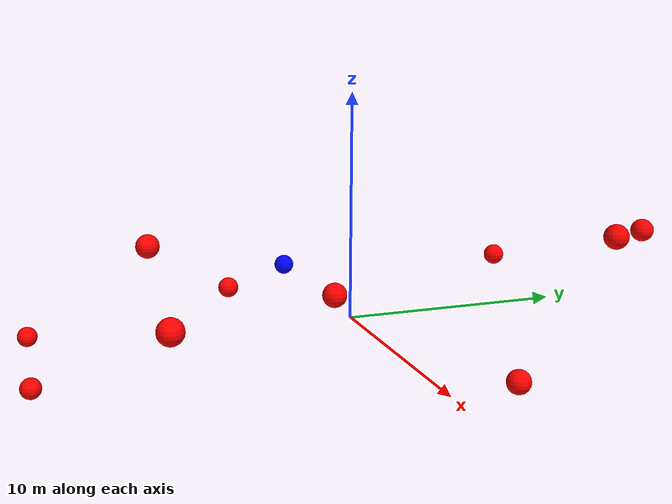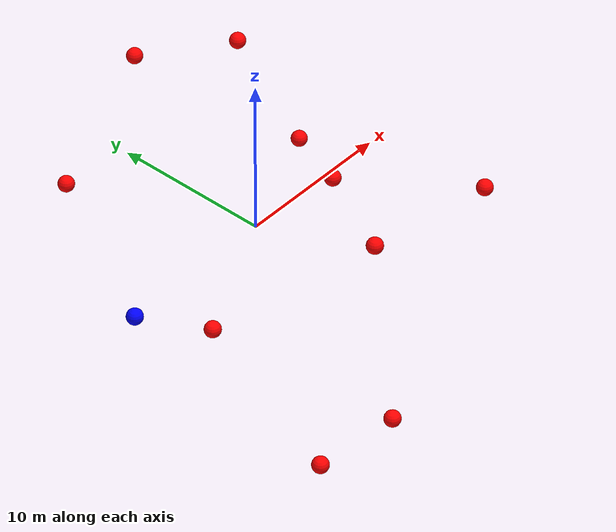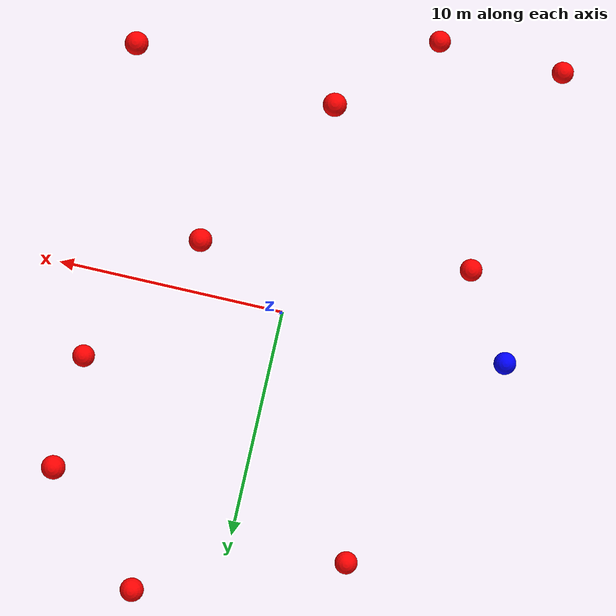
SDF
<?xml version="1.0" ?>
<sdf version="1.8">
    <world name="3d_world">
        <physics name="1ms" type="ode">
            <max_step_size>0.001</max_step_size>
            <real_time_factor>1.0</real_time_factor>
            <real_time_update_rate>1000.0</real_time_update_rate>
        </physics>
        <gravity>0 0 0</gravity>

        <plugin
            filename="gz-sim-physics-system"
            name="gz::sim::v8::systems::Physics">
        </plugin>
        <plugin
            filename="libignition-gazebo-user-commands-system.so"
            name="ignition::gazebo::systems::UserCommands">
        </plugin>
        <plugin
            filename="gz-sim-scene-broadcaster-system"
            name="gz::sim::systems::SceneBroadcaster">
        </plugin>
        <plugin
            filename="gz-sim-sensors-system"
            name="gz::sim::systems::Sensors">
            <render_engine>ogre2</render_engine>
        </plugin>

        <light type="directional" name="sun">
            <cast_shadows>true</cast_shadows>
            <pose>0 0 10 0 0 0</pose>
            <diffuse>0.8 0.8 0.8 1</diffuse>
            <specular>0.2 0.2 0.2 1</specular>
            <attenuation>
                <range>1000</range>
                <constant>0.9</constant>
                <linear>0.01</linear>
                <quadratic>0.001</quadratic>
            </attenuation>
            <direction>-0.5 0.1 -0.9</direction>
        </light>

        <!-- AGENTE -->
        <model name='agente' canonical_link='chassis'>
            <pose relative_to='world'>-10.0 0 0.0 0 0 0</pose>
            <link name='chassis'>
                <pose relative_to='__model__'>0.0 0 0.0 0 0 0</pose>
                <inertial>
                    <mass>1.14395</mass>
                    <inertia>
                        <ixx>0.095329</ixx>
                        <ixy>0</ixy>
                        <ixz>0</ixz>
                        <iyy>0.381317</iyy>
                        <iyz>0</iyz>
                        <izz>0.476646</izz>
                    </inertia>
                </inertial>
                <visual name='visual'>
                    <geometry>
                        <sphere>
                            <radius>0.5</radius>
                        </sphere>
                    </geometry>
                    <material>
                        <ambient>0.0 0.0 1.0 1</ambient>
                        <diffuse>0.0 0.0 1.0 1</diffuse>
                        <specular>0.0 0.0 1.0 1</specular>
                    </material>
                </visual>
                <collision name='collision'>
                    <geometry>
                        <sphere>
                            <radius>0.5</radius>
                        </sphere>
                    </geometry>
                </collision>
                <enable_gravity>false</enable_gravity>
            </link>

            <link name='lidar_link'>
                <pose relative_to='chassis'>0.0 0 0.1 0 0 0</pose>
                <inertial>
                    <mass>0.1</mass>
                    <inertia>
                        <ixx>0.000166667</ixx>
                        <iyy>0.000166667</iyy>
                        <izz>0.000166667</izz>
                    </inertia>
                </inertial>
                <collision name='collision'>
                    <geometry>
                        <cylinder>
                            <radius>0.05</radius>
                            <length>0.1</length>
                        </cylinder>
                    </geometry>
                </collision>
                <visual name='visual'>
                    <geometry>
                        <cylinder>
                            <radius>0.05</radius>
                            <length>0.1</length>
                        </cylinder>
                    </geometry>
                    <material>
                        <ambient>0.0 1.0 0.0 1</ambient>
                        <diffuse>0.0 1.0 0.0 1</diffuse>
                        <specular>0.0 1.0 0.0 1</specular>
                    </material>
                </visual>
                <sensor name="lidar" type="gpu_lidar">
                    <topic>scan</topic>
                    <update_rate>10</update_rate>
                    <lidar>
                        <scan>
                            <horizontal>
                                <samples>5000</samples>
                                <resolution>1</resolution>
                                <min_angle>-3.14159</min_angle>
                                <max_angle>3.14159</max_angle>
                            </horizontal>
                        </scan>
                        <range>
                            <min>0.1</min>
                            <max>10.0</max>
                            <resolution>0.01</resolution>
                        </range>
                    </lidar>
                    <visualize>true</visualize>
                    <always_on>true</always_on>
                    <update_rate>10</update_rate>
                    <pose_frame>lidar</pose_frame>
                </sensor>
                <enable_gravity>false</enable_gravity>
            </link>

            <joint name="lidar_joint" type="fixed">
                <parent>chassis</parent>
                <child>lidar_link</child>
            </joint>

            <plugin
                filename="ignition-gazebo-joint-state-publisher-system"
                name="ignition::gazebo::systems::JointStatePublisher">
            </plugin>
            <plugin
                filename="ignition-gazebo-odometry-publisher-system"
                name="ignition::gazebo::systems::OdometryPublisher">
                <dimensions>3</dimensions>
            </plugin>
            <plugin
                filename="ignition-gazebo-velocity-control-system"
                name="ignition::gazebo::systems::VelocityControl">
                <initial_linear>0.0 0 0</initial_linear>
                <initial_angular>0 0 0.0</initial_angular>
            </plugin>
            <plugin
                filename="libignition-gazebo-pose-publisher-system.so"
                name="ignition::gazebo::systems::PosePublisher">
                <topic>/agente/pose</topic>
                <frame_id>agente</frame_id>
                <update_rate>30</update_rate>
            </plugin>
        </model>

        <!-- OBSTACLE 1 -->
        <model name='obstacle_1' canonical_link='obstacle'>
            <static>false</static>
            <pose relative_to='world'>-7.68 -3.66 -0.32 0 0 0</pose>
            <link name='obstacle'>
                <pose relative_to='__model__'>0.0 0 0.0 0 0 0</pose>
                <visual name='visual'>
                    <geometry>
                        <sphere>
                            <radius>0.50</radius>
                        </sphere>
                    </geometry>
                    <material>
                        <ambient>1.0 0.0 0.0 1</ambient>
                        <diffuse>1.0 0.0 0.0 1</diffuse>
                        <specular>1.0 0.0 0.0 1</specular>
                    </material>
                </visual>
                <collision name='collision'>
                    <geometry>
                        <sphere>
                            <radius>0.50</radius>
                        </sphere>
                    </geometry>
                </collision>
                <enable_gravity>false</enable_gravity>
            </link>

            <plugin
                filename="ignition-gazebo-velocity-control-system"
                name="ignition::gazebo::systems::VelocityControl">
                <initial_linear>1.71 1.04 0.09</initial_linear>
                <initial_angular>0 0 0</initial_angular>
            </plugin>

            <plugin
                filename="ignition-gazebo-odometry-publisher-system"
                name="ignition::gazebo::systems::OdometryPublisher">
                <dimensions>3</dimensions>
            </plugin>
        </model>

        <!-- OBSTACLE 2 -->
        <model name='obstacle_2' canonical_link='obstacle'>
            <static>false</static>
            <pose relative_to='world'>-0.24 -8.88 3.89 0 0 0</pose>
            <link name='obstacle'>
                <pose relative_to='__model__'>0.0 0 0.0 0 0 0</pose>
                <visual name='visual'>
                    <geometry>
                        <sphere>
                            <radius>0.50</radius>
                        </sphere>
                    </geometry>
                    <material>
                        <ambient>1.0 0.0 0.0 1</ambient>
                        <diffuse>1.0 0.0 0.0 1</diffuse>
                        <specular>1.0 0.0 0.0 1</specular>
                    </material>
                </visual>
                <collision name='collision'>
                    <geometry>
                        <sphere>
                            <radius>0.50</radius>
                        </sphere>
                    </geometry>
                </collision>
                <enable_gravity>false</enable_gravity>
            </link>

            <plugin
                filename="ignition-gazebo-velocity-control-system"
                name="ignition::gazebo::systems::VelocityControl">
                <initial_linear>0.63 1.70 -0.75</initial_linear>
                <initial_angular>0 0 0</initial_angular>
            </plugin>

            <plugin
                filename="ignition-gazebo-odometry-publisher-system"
                name="ignition::gazebo::systems::OdometryPublisher">
                <dimensions>3</dimensions>
            </plugin>
        </model>

        <!-- OBSTACLE 3 -->
        <model name='obstacle_3' canonical_link='obstacle'>
            <static>false</static>
            <pose relative_to='world'>-4.24 -13.68 -3.19 0 0 0</pose>
            <link name='obstacle'>
                <pose relative_to='__model__'>0.0 0 0.0 0 0 0</pose>
                <visual name='visual'>
                    <geometry>
                        <sphere>
                            <radius>0.50</radius>
                        </sphere>
                    </geometry>
                    <material>
                        <ambient>1.0 0.0 0.0 1</ambient>
                        <diffuse>1.0 0.0 0.0 1</diffuse>
                        <specular>1.0 0.0 0.0 1</specular>
                    </material>
                </visual>
                <collision name='collision'>
                    <geometry>
                        <sphere>
                            <radius>0.50</radius>
                        </sphere>
                    </geometry>
                </collision>
                <enable_gravity>false</enable_gravity>
            </link>

            <plugin
                filename="ignition-gazebo-velocity-control-system"
                name="ignition::gazebo::systems::VelocityControl">
                <initial_linear>0.97 1.70 0.40</initial_linear>
                <initial_angular>0 0 0</initial_angular>
            </plugin>

            <plugin
                filename="ignition-gazebo-odometry-publisher-system"
                name="ignition::gazebo::systems::OdometryPublisher">
                <dimensions>3</dimensions>
            </plugin>
        </model>

        <!-- OBSTACLE 4 -->
        <model name='obstacle_4' canonical_link='obstacle'>
            <static>false</static>
            <pose relative_to='world'>-5.11 9.92 0.91 0 0 0</pose>
            <link name='obstacle'>
                <pose relative_to='__model__'>0.0 0 0.0 0 0 0</pose>
                <visual name='visual'>
                    <geometry>
                        <sphere>
                            <radius>0.50</radius>
                        </sphere>
                    </geometry>
                    <material>
                        <ambient>1.0 0.0 0.0 1</ambient>
                        <diffuse>1.0 0.0 0.0 1</diffuse>
                        <specular>1.0 0.0 0.0 1</specular>
                    </material>
                </visual>
                <collision name='collision'>
                    <geometry>
                        <sphere>
                            <radius>0.50</radius>
                        </sphere>
                    </geometry>
                </collision>
                <enable_gravity>false</enable_gravity>
            </link>

            <plugin
                filename="ignition-gazebo-velocity-control-system"
                name="ignition::gazebo::systems::VelocityControl">
                <initial_linear>0.91 -1.77 -0.16</initial_linear>
                <initial_angular>0 0 0</initial_angular>
            </plugin>

            <plugin
                filename="ignition-gazebo-odometry-publisher-system"
                name="ignition::gazebo::systems::OdometryPublisher">
                <dimensions>3</dimensions>
            </plugin>
        </model>

        <!-- OBSTACLE 5 -->
        <model name='obstacle_5' canonical_link='obstacle'>
            <static>false</static>
            <pose relative_to='world'>7.64 8.19 4.72 0 0 0</pose>
            <link name='obstacle'>
                <pose relative_to='__model__'>0.0 0 0.0 0 0 0</pose>
                <visual name='visual'>
                    <geometry>
                        <sphere>
                            <radius>0.50</radius>
                        </sphere>
                    </geometry>
                    <material>
                        <ambient>1.0 0.0 0.0 1</ambient>
                        <diffuse>1.0 0.0 0.0 1</diffuse>
                        <specular>1.0 0.0 0.0 1</specular>
                    </material>
                </visual>
                <collision name='collision'>
                    <geometry>
                        <sphere>
                            <radius>0.50</radius>
                        </sphere>
                    </geometry>
                </collision>
                <enable_gravity>false</enable_gravity>
            </link>

            <plugin
                filename="ignition-gazebo-velocity-control-system"
                name="ignition::gazebo::systems::VelocityControl">
                <initial_linear>-0.07 -1.19 -0.69</initial_linear>
                <initial_angular>0 0 0</initial_angular>
            </plugin>

            <plugin
                filename="ignition-gazebo-odometry-publisher-system"
                name="ignition::gazebo::systems::OdometryPublisher">
                <dimensions>3</dimensions>
            </plugin>
        </model>

        <!-- OBSTACLE 6 -->
        <model name='obstacle_6' canonical_link='obstacle'>
            <static>false</static>
            <pose relative_to='world'>4.03 -2.23 2.34 0 0 0</pose>
            <link name='obstacle'>
                <pose relative_to='__model__'>0.0 0 0.0 0 0 0</pose>
                <visual name='visual'>
                    <geometry>
                        <sphere>
                            <radius>0.50</radius>
                        </sphere>
                    </geometry>
                    <material>
                        <ambient>1.0 0.0 0.0 1</ambient>
                        <diffuse>1.0 0.0 0.0 1</diffuse>
                        <specular>1.0 0.0 0.0 1</specular>
                    </material>
                </visual>
                <collision name='collision'>
                    <geometry>
                        <sphere>
                            <radius>0.50</radius>
                        </sphere>
                    </geometry>
                </collision>
                <enable_gravity>false</enable_gravity>
            </link>

            <plugin
                filename="ignition-gazebo-velocity-control-system"
                name="ignition::gazebo::systems::VelocityControl">
                <initial_linear>-1.77 0.64 -0.68</initial_linear>
                <initial_angular>0 0 0</initial_angular>
            </plugin>

            <plugin
                filename="ignition-gazebo-odometry-publisher-system"
                name="ignition::gazebo::systems::OdometryPublisher">
                <dimensions>3</dimensions>
            </plugin>
        </model>

        <!-- OBSTACLE 7 -->
        <model name='obstacle_7' canonical_link='obstacle'>
            <static>false</static>
            <pose relative_to='world'>3.47 12.53 3.80 0 0 0</pose>
            <link name='obstacle'>
                <pose relative_to='__model__'>0.0 0 0.0 0 0 0</pose>
                <visual name='visual'>
                    <geometry>
                        <sphere>
                            <radius>0.50</radius>
                        </sphere>
                    </geometry>
                    <material>
                        <ambient>1.0 0.0 0.0 1</ambient>
                        <diffuse>1.0 0.0 0.0 1</diffuse>
                        <specular>1.0 0.0 0.0 1</specular>
                    </material>
                </visual>
                <collision name='collision'>
                    <geometry>
                        <sphere>
                            <radius>0.50</radius>
                        </sphere>
                    </geometry>
                </collision>
                <enable_gravity>false</enable_gravity>
            </link>

            <plugin
                filename="ignition-gazebo-velocity-control-system"
                name="ignition::gazebo::systems::VelocityControl">
                <initial_linear>-0.89 -1.72 -0.52</initial_linear>
                <initial_angular>0 0 0</initial_angular>
            </plugin>

            <plugin
                filename="ignition-gazebo-odometry-publisher-system"
                name="ignition::gazebo::systems::OdometryPublisher">
                <dimensions>3</dimensions>
            </plugin>
        </model>

        <!-- OBSTACLE 8 -->
        <model name='obstacle_8' canonical_link='obstacle'>
            <static>false</static>
            <pose relative_to='world'>8.13 3.83 -0.58 0 0 0</pose>
            <link name='obstacle'>
                <pose relative_to='__model__'>0.0 0 0.0 0 0 0</pose>
                <visual name='visual'>
                    <geometry>
                        <sphere>
                            <radius>0.50</radius>
                        </sphere>
                    </geometry>
                    <material>
                        <ambient>1.0 0.0 0.0 1</ambient>
                        <diffuse>1.0 0.0 0.0 1</diffuse>
                        <specular>1.0 0.0 0.0 1</specular>
                    </material>
                </visual>
                <collision name='collision'>
                    <geometry>
                        <sphere>
                            <radius>0.50</radius>
                        </sphere>
                    </geometry>
                </collision>
                <enable_gravity>false</enable_gravity>
            </link>

            <plugin
                filename="ignition-gazebo-velocity-control-system"
                name="ignition::gazebo::systems::VelocityControl">
                <initial_linear>-1.87 -0.70 0.11</initial_linear>
                <initial_angular>0 0 0</initial_angular>
            </plugin>

            <plugin
                filename="ignition-gazebo-odometry-publisher-system"
                name="ignition::gazebo::systems::OdometryPublisher">
                <dimensions>3</dimensions>
            </plugin>
        </model>

        <!-- OBSTACLE 9 -->
        <model name='obstacle_9' canonical_link='obstacle'>
            <static>false</static>
            <pose relative_to='world'>-9.97 -13.44 -2.60 0 0 0</pose>
            <link name='obstacle'>
                <pose relative_to='__model__'>0.0 0 0.0 0 0 0</pose>
                <visual name='visual'>
                    <geometry>
                        <sphere>
                            <radius>0.50</radius>
                        </sphere>
                    </geometry>
                    <material>
                        <ambient>1.0 0.0 0.0 1</ambient>
                        <diffuse>1.0 0.0 0.0 1</diffuse>
                        <specular>1.0 0.0 0.0 1</specular>
                    </material>
                </visual>
                <collision name='collision'>
                    <geometry>
                        <sphere>
                            <radius>0.50</radius>
                        </sphere>
                    </geometry>
                </collision>
                <enable_gravity>false</enable_gravity>
            </link>

            <plugin
                filename="ignition-gazebo-velocity-control-system"
                name="ignition::gazebo::systems::VelocityControl">
                <initial_linear>1.40 1.40 0.27</initial_linear>
                <initial_angular>0 0 0</initial_angular>
            </plugin>

            <plugin
                filename="ignition-gazebo-odometry-publisher-system"
                name="ignition::gazebo::systems::OdometryPublisher">
                <dimensions>3</dimensions>
            </plugin>
        </model>

        <!-- OBSTACLE 10 -->
        <model name='obstacle_10' canonical_link='obstacle'>
            <static>false</static>
            <pose relative_to='world'>8.43 -9.65 2.98 0 0 0</pose>
            <link name='obstacle'>
                <pose relative_to='__model__'>0.0 0 0.0 0 0 0</pose>
                <visual name='visual'>
                    <geometry>
                        <sphere>
                            <radius>0.50</radius>
                        </sphere>
                    </geometry>
                    <material>
                        <ambient>1.0 0.0 0.0 1</ambient>
                        <diffuse>1.0 0.0 0.0 1</diffuse>
                        <specular>1.0 0.0 0.0 1</specular>
                    </material>
                </visual>
                <collision name='collision'>
                    <geometry>
                        <sphere>
                            <radius>0.50</radius>
                        </sphere>
                    </geometry>
                </collision>
                <enable_gravity>false</enable_gravity>
            </link>

            <plugin
                filename="ignition-gazebo-velocity-control-system"
                name="ignition::gazebo::systems::VelocityControl">
                <initial_linear>-1.16 1.56 -0.48</initial_linear>
                <initial_angular>0 0 0</initial_angular>
            </plugin>

            <plugin
                filename="ignition-gazebo-odometry-publisher-system"
                name="ignition::gazebo::systems::OdometryPublisher">
                <dimensions>3</dimensions>
            </plugin>
        </model>

    </world>
</sdf>
